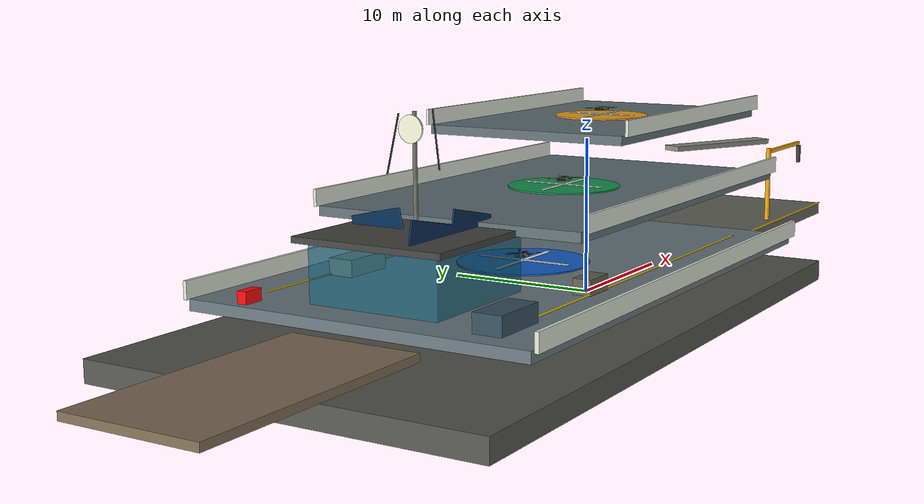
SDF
<?xml version="1.0"?>
<sdf version="1.10">
  <model name="uav_launch_platform_3tier">
    <static>true</static>
    <link name="platform">
      <collision name="shore_base_collision">
        <pose>-10 0 0.65 0 0 0</pose>
        <geometry><box><size>42 24 1.3</size></box></geometry>
      </collision>
      <visual name="shore_base_visual">
        <pose>-10 0 0.65 0 0 0</pose>
        <geometry><box><size>42 24 1.3</size></box></geometry>
        <material><ambient>0.18 0.18 0.17 1</ambient><diffuse>0.34 0.34 0.32 1</diffuse></material>
      </visual>

      <collision name="pier_collision">
        <pose>18 0 1.15 0 0 0</pose>
        <geometry><box><size>30 9 0.9</size></box></geometry>
      </collision>
      <visual name="pier_visual">
        <pose>18 0 1.15 0 0 0</pose>
        <geometry><box><size>30 9 0.9</size></box></geometry>
        <material><ambient>0.20 0.20 0.19 1</ambient><diffuse>0.40 0.40 0.37 1</diffuse></material>
      </visual>

      <collision name="level_1_collision">
        <pose>-8 0 3.0 0 0 0</pose>
        <geometry><box><size>34 21 0.65</size></box></geometry>
      </collision>
      <visual name="level_1_visual">
        <pose>-8 0 3.0 0 0 0</pose>
        <geometry><box><size>34 21 0.65</size></box></geometry>
        <material><ambient>0.24 0.27 0.28 1</ambient><diffuse>0.42 0.48 0.50 1</diffuse></material>
      </visual>

      <collision name="level_2_collision">
        <pose>-3 0 7.0 0 0 0</pose>
        <geometry><box><size>27 17 0.58</size></box></geometry>
      </collision>
      <visual name="level_2_visual">
        <pose>-3 0 7.0 0 0 0</pose>
        <geometry><box><size>27 17 0.58</size></box></geometry>
        <material><ambient>0.23 0.26 0.27 1</ambient><diffuse>0.39 0.45 0.47 1</diffuse></material>
      </visual>

      <collision name="level_3_collision">
        <pose>2 0 11.0 0 0 0</pose>
        <geometry><box><size>20 13 0.55</size></box></geometry>
      </collision>
      <visual name="level_3_visual">
        <pose>2 0 11.0 0 0 0</pose>
        <geometry><box><size>20 13 0.55</size></box></geometry>
        <material><ambient>0.23 0.26 0.27 1</ambient><diffuse>0.39 0.45 0.47 1</diffuse></material>
      </visual>

      <visual name="shore_ramp">
        <pose>-32 0 2.0 0 0 0</pose>
        <geometry><box><size>15 8 0.45</size></box></geometry>
        <material><ambient>0.22 0.20 0.17 1</ambient><diffuse>0.50 0.44 0.34 1</diffuse></material>
      </visual>
      <visual name="terminal_glass">
        <pose>-19 0 5.0 0 0 0</pose>
        <geometry><box><size>8 8 3.2</size></box></geometry>
        <material><ambient>0.05 0.18 0.22 0.65</ambient><diffuse>0.10 0.42 0.52 0.65</diffuse></material>
      </visual>
      <visual name="terminal_roof">
        <pose>-19 0 6.85 0 0 0</pose>
        <geometry><box><size>9.2 9.2 0.35</size></box></geometry>
        <material><ambient>0.14 0.14 0.14 1</ambient><diffuse>0.27 0.27 0.26 1</diffuse></material>
      </visual>
      <visual name="terminal_roof_solar_left"><pose>-20.9 -2.2 7.15 0 0.22 0</pose><geometry><box><size>3.6 0.12 1.55</size></box></geometry><material><ambient>0.02 0.08 0.14 1</ambient><diffuse>0.03 0.18 0.34 1</diffuse><specular>0.25 0.35 0.42 1</specular></material></visual>
      <visual name="terminal_roof_solar_right"><pose>-17.1 -2.2 7.15 0 0.22 0</pose><geometry><box><size>3.6 0.12 1.55</size></box></geometry><material><ambient>0.02 0.08 0.14 1</ambient><diffuse>0.03 0.18 0.34 1</diffuse><specular>0.25 0.35 0.42 1</specular></material></visual>
      <visual name="terminal_roof_solar_rear"><pose>-19 2.5 7.15 0 0.22 1.5708</pose><geometry><box><size>3.2 0.12 1.35</size></box></geometry><material><ambient>0.02 0.08 0.14 1</ambient><diffuse>0.03 0.18 0.34 1</diffuse><specular>0.25 0.35 0.42 1</specular></material></visual>

      <visual name="pad_1">
        <pose>-8 0 3.40 0 0 0</pose>
        <geometry><cylinder><radius>4.0</radius><length>0.09</length></cylinder></geometry>
        <material><ambient>0.04 0.20 0.40 1</ambient><diffuse>0.08 0.38 0.80 1</diffuse></material>
      </visual>
      <visual name="pad_2">
        <pose>-3 0 7.34 0 0 0</pose>
        <geometry><cylinder><radius>3.5</radius><length>0.09</length></cylinder></geometry>
        <material><ambient>0.04 0.30 0.16 1</ambient><diffuse>0.08 0.60 0.30 1</diffuse></material>
      </visual>
      <visual name="pad_3">
        <pose>2 0 11.33 0 0 0</pose>
        <geometry><cylinder><radius>3.0</radius><length>0.09</length></cylinder></geometry>
        <material><ambient>0.46 0.29 0.03 1</ambient><diffuse>0.95 0.64 0.10 1</diffuse></material>
      </visual>

      <visual name="pad_1_h"><pose>-8 0 3.48 0 0 0</pose><geometry><box><size>6.2 0.28 0.045</size></box></geometry><material><ambient>1 1 1 1</ambient><diffuse>1 1 1 1</diffuse></material></visual>
      <visual name="pad_1_h_cross"><pose>-8 0 3.49 0 0 1.5708</pose><geometry><box><size>6.2 0.28 0.045</size></box></geometry><material><ambient>1 1 1 1</ambient><diffuse>1 1 1 1</diffuse></material></visual>
      <visual name="pad_2_h"><pose>-3 0 7.42 0 0 0</pose><geometry><box><size>5.4 0.25 0.045</size></box></geometry><material><ambient>1 1 1 1</ambient><diffuse>1 1 1 1</diffuse></material></visual>
      <visual name="pad_2_h_cross"><pose>-3 0 7.43 0 0 1.5708</pose><geometry><box><size>5.4 0.25 0.045</size></box></geometry><material><ambient>1 1 1 1</ambient><diffuse>1 1 1 1</diffuse></material></visual>
      <visual name="pad_3_h"><pose>2 0 11.41 0 0 0</pose><geometry><box><size>4.7 0.22 0.045</size></box></geometry><material><ambient>1 1 1 1</ambient><diffuse>1 1 1 1</diffuse></material></visual>
      <visual name="pad_3_h_cross"><pose>2 0 11.42 0 0 1.5708</pose><geometry><box><size>4.7 0.22 0.045</size></box></geometry><material><ambient>1 1 1 1</ambient><diffuse>1 1 1 1</diffuse></material></visual>

      <visual name="level_1_front_rail"><pose>-8 -10.8 3.75 0 0 0</pose><geometry><box><size>34 0.22 1.05</size></box></geometry><material><ambient>0.65 0.67 0.62 1</ambient><diffuse>0.88 0.90 0.84 1</diffuse></material></visual>
      <visual name="level_1_back_rail"><pose>-8 10.8 3.75 0 0 0</pose><geometry><box><size>34 0.22 1.05</size></box></geometry><material><ambient>0.65 0.67 0.62 1</ambient><diffuse>0.88 0.90 0.84 1</diffuse></material></visual>
      <visual name="level_2_front_rail"><pose>-3 -8.8 7.72 0 0 0</pose><geometry><box><size>27 0.20 1.0</size></box></geometry><material><ambient>0.65 0.67 0.62 1</ambient><diffuse>0.88 0.90 0.84 1</diffuse></material></visual>
      <visual name="level_2_back_rail"><pose>-3 8.8 7.72 0 0 0</pose><geometry><box><size>27 0.20 1.0</size></box></geometry><material><ambient>0.65 0.67 0.62 1</ambient><diffuse>0.88 0.90 0.84 1</diffuse></material></visual>
      <visual name="level_3_front_rail"><pose>2 -6.8 11.72 0 0 0</pose><geometry><box><size>20 0.18 0.95</size></box></geometry><material><ambient>0.65 0.67 0.62 1</ambient><diffuse>0.88 0.90 0.84 1</diffuse></material></visual>
      <visual name="level_3_back_rail"><pose>2 6.8 11.72 0 0 0</pose><geometry><box><size>20 0.18 0.95</size></box></geometry><material><ambient>0.65 0.67 0.62 1</ambient><diffuse>0.88 0.90 0.84 1</diffuse></material></visual>

      <visual name="stair_lower"><pose>8 7.1 5.15 0 0 0.45</pose><geometry><box><size>10 1.5 0.35</size></box></geometry><material><ambient>0.26 0.27 0.25 1</ambient><diffuse>0.55 0.56 0.52 1</diffuse></material></visual>
      <visual name="stair_upper"><pose>8 -5.7 9.15 0 0 -0.45</pose><geometry><box><size>8 1.3 0.32</size></box></geometry><material><ambient>0.26 0.27 0.25 1</ambient><diffuse>0.55 0.56 0.52 1</diffuse></material></visual>

      <visual name="pier_left_safety_stripe"><pose>18 -4.65 1.67 0 0 0</pose><geometry><box><size>29 0.18 0.08</size></box></geometry><material><ambient>0.92 0.66 0.05 1</ambient><diffuse>1.0 0.82 0.08 1</diffuse></material></visual>
      <visual name="pier_right_safety_stripe"><pose>18 4.65 1.67 0 0 0</pose><geometry><box><size>29 0.18 0.08</size></box></geometry><material><ambient>0.92 0.66 0.05 1</ambient><diffuse>1.0 0.82 0.08 1</diffuse></material></visual>
      <visual name="level_1_landing_guideline_front"><pose>-8 -7.7 3.43 0 0 0</pose><geometry><box><size>28 0.16 0.05</size></box></geometry><material><ambient>0.92 0.66 0.05 1</ambient><diffuse>1.0 0.82 0.08 1</diffuse></material></visual>
      <visual name="level_1_landing_guideline_back"><pose>-8 7.7 3.43 0 0 0</pose><geometry><box><size>28 0.16 0.05</size></box></geometry><material><ambient>0.92 0.66 0.05 1</ambient><diffuse>1.0 0.82 0.08 1</diffuse></material></visual>

      <visual name="equipment_container_a"><pose>-22 -7.3 3.85 0 0 0</pose><geometry><box><size>3.4 1.7 1.1</size></box></geometry><material><ambient>0.12 0.18 0.22 1</ambient><diffuse>0.22 0.32 0.38 1</diffuse></material></visual>
      <visual name="equipment_container_b"><pose>-15 7.0 3.85 0 0 0</pose><geometry><box><size>3.2 1.6 1.0</size></box></geometry><material><ambient>0.26 0.24 0.18 1</ambient><diffuse>0.55 0.50 0.38 1</diffuse></material></visual>
      <visual name="battery_cabinet"><pose>-13 -7.2 3.78 0 0 0</pose><geometry><box><size>2.0 1.1 0.9</size></box></geometry><material><ambient>0.18 0.18 0.17 1</ambient><diffuse>0.38 0.38 0.34 1</diffuse></material></visual>
      <visual name="fire_safety_box"><pose>-24 7.2 3.65 0 0 0</pose><geometry><box><size>1.2 0.6 0.75</size></box></geometry><material><ambient>0.65 0.02 0.02 1</ambient><diffuse>1.0 0.04 0.04 1</diffuse></material></visual>

      <visual name="command_mast"><pose>-19 0 10.2 0 0 0</pose><geometry><cylinder><radius>0.12</radius><length>6.2</length></cylinder></geometry><material><ambient>0.18 0.18 0.17 1</ambient><diffuse>0.46 0.46 0.42 1</diffuse></material></visual>
      <visual name="radar_dish"><pose>-19.35 0 12.4 0 1.5708 0</pose><geometry><cylinder><radius>0.75</radius><length>0.12</length></cylinder></geometry><material><ambient>0.78 0.78 0.72 1</ambient><diffuse>0.96 0.96 0.86 1</diffuse></material></visual>
      <visual name="comms_antenna_left"><pose>-20.3 0.45 11.7 0.2 0 0.45</pose><geometry><cylinder><radius>0.045</radius><length>3.2</length></cylinder></geometry><material><ambient>0.08 0.08 0.08 1</ambient><diffuse>0.18 0.18 0.18 1</diffuse></material></visual>
      <visual name="comms_antenna_right"><pose>-17.7 -0.45 11.7 -0.2 0 -0.45</pose><geometry><cylinder><radius>0.045</radius><length>3.2</length></cylinder></geometry><material><ambient>0.08 0.08 0.08 1</ambient><diffuse>0.18 0.18 0.18 1</diffuse></material></visual>

      <visual name="service_crane_mast"><pose>12 -7.8 6.1 0 0 0</pose><geometry><cylinder><radius>0.16</radius><length>5.0</length></cylinder></geometry><material><ambient>0.55 0.38 0.02 1</ambient><diffuse>0.96 0.68 0.05 1</diffuse></material></visual>
      <visual name="service_crane_boom"><pose>15.0 -7.8 8.35 0 0 0</pose><geometry><box><size>6.0 0.24 0.24</size></box></geometry><material><ambient>0.55 0.38 0.02 1</ambient><diffuse>0.96 0.68 0.05 1</diffuse></material></visual>
      <visual name="service_crane_hook"><pose>18.1 -7.8 7.55 0 0 0</pose><geometry><box><size>0.24 0.24 1.2</size></box></geometry><material><ambient>0.12 0.12 0.12 1</ambient><diffuse>0.25 0.25 0.23 1</diffuse></material></visual>

      <visual name="uav_marker_1_body"><pose>-8 0 3.86 0 0 0</pose><geometry><box><size>1.05 0.52 0.20</size></box></geometry><material><ambient>0.02 0.025 0.03 1</ambient><diffuse>0.05 0.06 0.07 1</diffuse></material></visual>
      <visual name="uav_marker_1_arm_x"><pose>-8 0 3.91 0 0 0.7854</pose><geometry><box><size>2.2 0.08 0.06</size></box></geometry><material><ambient>0.04 0.04 0.045 1</ambient><diffuse>0.1 0.1 0.11 1</diffuse></material></visual>
      <visual name="uav_marker_1_arm_y"><pose>-8 0 3.92 0 0 -0.7854</pose><geometry><box><size>2.2 0.08 0.06</size></box></geometry><material><ambient>0.04 0.04 0.045 1</ambient><diffuse>0.1 0.1 0.11 1</diffuse></material></visual>
      <visual name="uav_marker_2_body"><pose>-3 0 7.80 0 0 0</pose><geometry><box><size>1.05 0.52 0.20</size></box></geometry><material><ambient>0.02 0.025 0.03 1</ambient><diffuse>0.05 0.06 0.07 1</diffuse></material></visual>
      <visual name="uav_marker_2_arm_x"><pose>-3 0 7.85 0 0 0.7854</pose><geometry><box><size>2.2 0.08 0.06</size></box></geometry><material><ambient>0.04 0.04 0.045 1</ambient><diffuse>0.1 0.1 0.11 1</diffuse></material></visual>
      <visual name="uav_marker_2_arm_y"><pose>-3 0 7.86 0 0 -0.7854</pose><geometry><box><size>2.2 0.08 0.06</size></box></geometry><material><ambient>0.04 0.04 0.045 1</ambient><diffuse>0.1 0.1 0.11 1</diffuse></material></visual>
      <visual name="uav_marker_3_body"><pose>2 0 11.79 0 0 0</pose><geometry><box><size>1.05 0.52 0.20</size></box></geometry><material><ambient>0.02 0.025 0.03 1</ambient><diffuse>0.05 0.06 0.07 1</diffuse></material></visual>
      <visual name="uav_marker_3_arm_x"><pose>2 0 11.84 0 0 0.7854</pose><geometry><box><size>2.2 0.08 0.06</size></box></geometry><material><ambient>0.04 0.04 0.045 1</ambient><diffuse>0.1 0.1 0.11 1</diffuse></material></visual>
      <visual name="uav_marker_3_arm_y"><pose>2 0 11.85 0 0 -0.7854</pose><geometry><box><size>2.2 0.08 0.06</size></box></geometry><material><ambient>0.04 0.04 0.045 1</ambient><diffuse>0.1 0.1 0.11 1</diffuse></material></visual>

      <light name="platform_beacon" type="point"><pose>2 0 13.8 0 0 0</pose><cast_shadows>false</cast_shadows><intensity>3.0</intensity><diffuse>1 0.78 0.25 1</diffuse><attenuation><range>100</range><constant>0.7</constant><linear>0.025</linear><quadratic>0.0008</quadratic></attenuation></light>
      <light name="pad_1_light" type="point"><pose>-8 0 4.2 0 0 0</pose><cast_shadows>false</cast_shadows><intensity>1.2</intensity><diffuse>0.2 0.55 1 1</diffuse><attenuation><range>35</range><constant>0.8</constant><linear>0.04</linear><quadratic>0.002</quadratic></attenuation></light>
      <light name="pad_2_light" type="point"><pose>-3 0 8.2 0 0 0</pose><cast_shadows>false</cast_shadows><intensity>1.2</intensity><diffuse>0.2 1 0.45 1</diffuse><attenuation><range>35</range><constant>0.8</constant><linear>0.04</linear><quadratic>0.002</quadratic></attenuation></light>
      <light name="pad_3_light" type="point"><pose>2 0 12.2 0 0 0</pose><cast_shadows>false</cast_shadows><intensity>1.2</intensity><diffuse>1 0.75 0.2 1</diffuse><attenuation><range>35</range><constant>0.8</constant><linear>0.04</linear><quadratic>0.002</quadratic></attenuation></light>
      <light name="platform_floodlight_left" type="point"><pose>-18 -8.4 8.0 0 0 0</pose><cast_shadows>false</cast_shadows><intensity>1.7</intensity><diffuse>0.95 0.96 0.86 1</diffuse><attenuation><range>55</range><constant>0.8</constant><linear>0.03</linear><quadratic>0.0015</quadratic></attenuation></light>
      <light name="platform_floodlight_right" type="point"><pose>-18 8.4 8.0 0 0 0</pose><cast_shadows>false</cast_shadows><intensity>1.7</intensity><diffuse>0.95 0.96 0.86 1</diffuse><attenuation><range>55</range><constant>0.8</constant><linear>0.03</linear><quadratic>0.0015</quadratic></attenuation></light>
      <light name="service_crane_warning_light" type="point"><pose>12 -7.8 8.8 0 0 0</pose><cast_shadows>false</cast_shadows><intensity>0.9</intensity><diffuse>1 0.52 0.05 1</diffuse><attenuation><range>35</range><constant>0.8</constant><linear>0.04</linear><quadratic>0.002</quadratic></attenuation></light>
    </link>
  </model>
</sdf>
